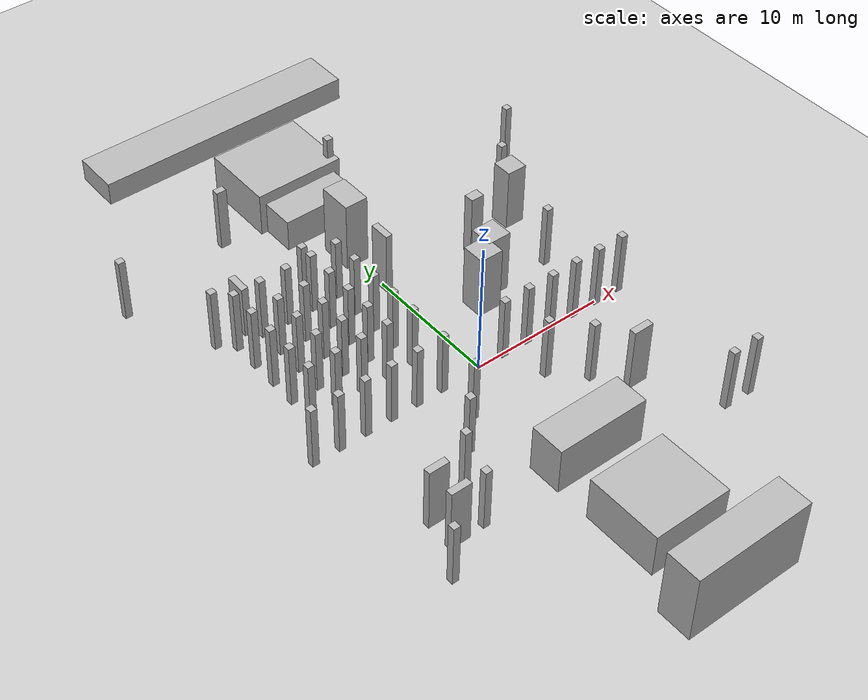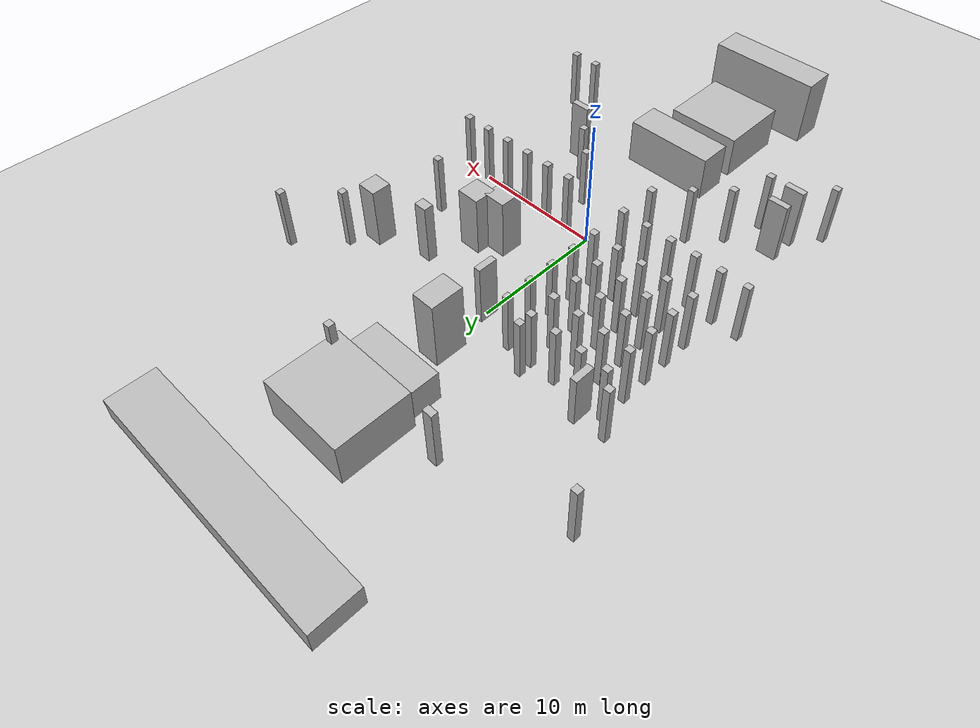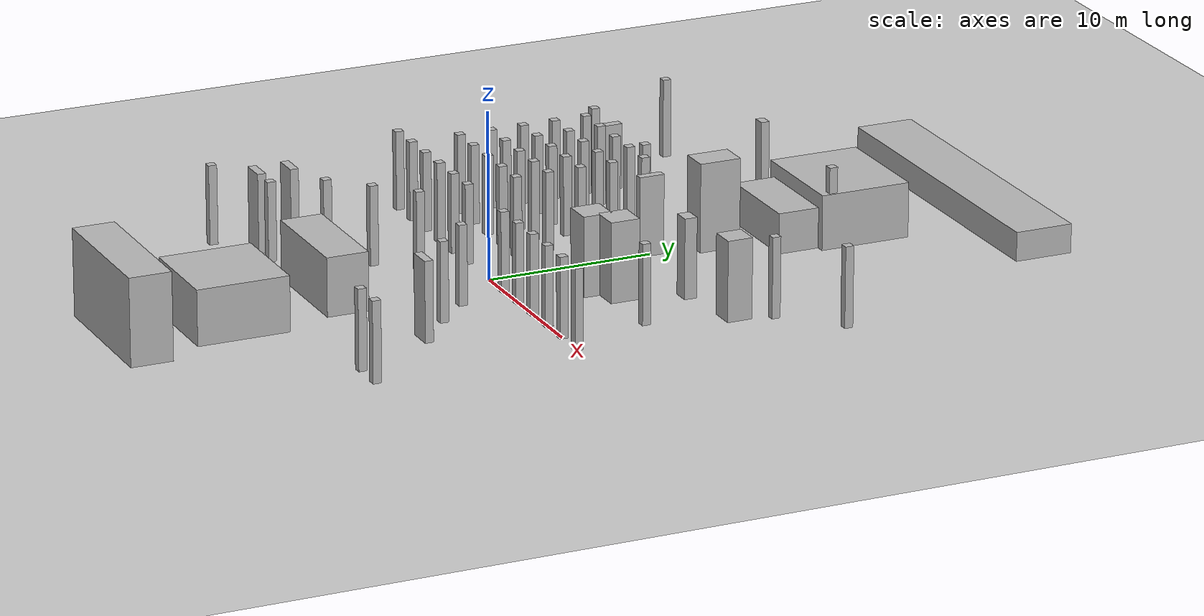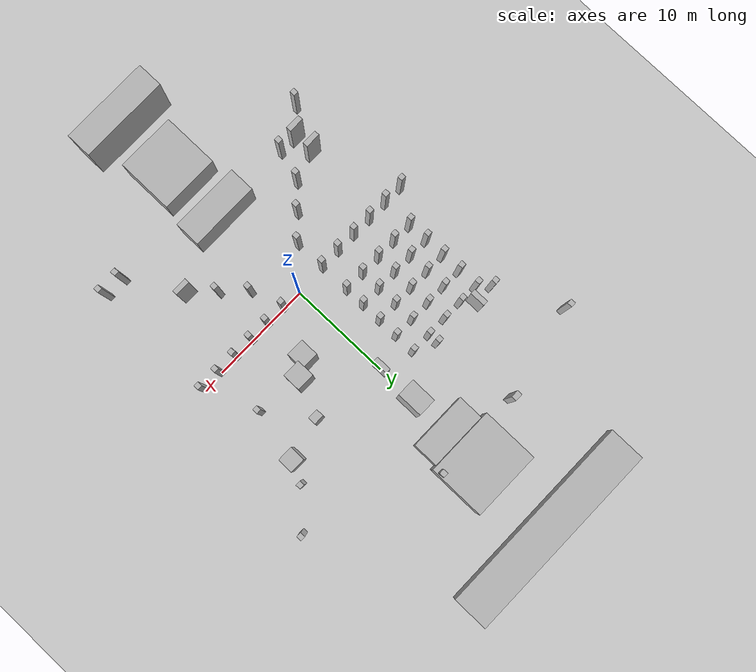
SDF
<?xml version="1.0" ?>
<sdf version="1.5">
  <world name="default">
    <!-- A global light source -->
    <include>
      <uri>model://sun</uri>
    </include>
    <!-- A ground plane -->
    <include>
      <uri>model://ground_plane</uri>
    </include>
    <physics name='default_physics' default='0' type='ode'>
      <gravity>0 0 -9.8066</gravity>
      <ode>
        <solver>
          <type>quick</type>
          <iters>10</iters>
          <sor>1.3</sor>
          <use_dynamic_moi_rescaling>0</use_dynamic_moi_rescaling>
        </solver>
        <constraints>
          <cfm>0</cfm>
          <erp>0.2</erp>
          <contact_max_correcting_vel>100</contact_max_correcting_vel>
          <contact_surface_layer>0.001</contact_surface_layer>
        </constraints>
      </ode>
      <max_step_size>0.004</max_step_size>
      <real_time_factor>1</real_time_factor>
      <real_time_update_rate>250</real_time_update_rate>
      <magnetic_field>6.0e-6 2.3e-5 -4.2e-5</magnetic_field>
    </physics>
	<model name ='box0'>
		<pose>4.0 4.5 2.4 0 0 0</pose>
		<link name ='link'>
		  <pose>0 0 0 0 0 0</pose>
		  <collision name ='collision'>
		    <geometry>
		      <box><size>1.75 1.75 4.8</size></box>
		    </geometry>
		  </collision>
		  <visual name ='visual'>
		    <geometry>
		      <box><size>1.75 1.75 4.8</size></box>
		    </geometry>
		  </visual>
		</link>
	  </model>
	<model name ='box1'>
		<pose>5.5 5.5 2.4 0 0 0</pose>
		<link name ='link'>
		  <pose>0 0 0 0 0 0</pose>
		  <collision name ='collision'>
		    <geometry>
		      <box><size>1.75 1.75 4.8</size></box>
		    </geometry>
		  </collision>
		  <visual name ='visual'>
		    <geometry>
		      <box><size>1.75 1.75 4.8</size></box>
		    </geometry>
		  </visual>
		</link>
	  </model>
	<model name ='box2'>
		<pose>7.0 9.0 2.4 0 0 0</pose>
		<link name ='link'>
		  <pose>0 0 0 0 0 0</pose>
		  <collision name ='collision'>
		    <geometry>
		      <box><size>1.0 0.75 4.8</size></box>
		    </geometry>
		  </collision>
		  <visual name ='visual'>
		    <geometry>
		      <box><size>1.0 0.75 4.8</size></box>
		    </geometry>
		  </visual>
		</link>
	  </model>
	<model name ='box3'>
		<pose>11.00 10.00 2.4 0 0 0</pose>
		<link name ='link'>
		  <pose>0 0 0 0 0 0</pose>
		  <collision name ='collision'>
		    <geometry>
		      <box><size>1.5 1.5 4.8</size></box>
		    </geometry>
		  </collision>
		  <visual name ='visual'>
		    <geometry>
		      <box><size>1.5 1.5 4.8</size></box>
		    </geometry>
		  </visual>
		</link>
	  </model>
	  <model name ='box4'>
		<pose>12.00 12.00 2.4 0 0 0</pose>
		<link name ='link'>
		  <pose>0 0 0 0 0 0</pose>
		  <collision name ='collision'>
		    <geometry>
		      <box><size>0.5 0.5 4.8</size></box>
		    </geometry>
		  </collision>
		  <visual name ='visual'>
		    <geometry>
		      <box><size>0.5 0.5 4.8</size></box>
		    </geometry>
		  </visual>
		</link>
	  </model>
	<model name ='box5'>
		<pose>-12.00 -12.00 2.4 0 0 0</pose>
		<link name ='link'>
		  <pose>0 0 0 0 0 0</pose>
		  <collision name ='collision'>
		    <geometry>
		      <box><size>0.5 0.5 4.8</size></box>
		    </geometry>
		  </collision>
		  <visual name ='visual'>
		    <geometry>
		      <box><size>0.5 0.5 4.8</size></box>
		    </geometry>
		  </visual>
		</link>
	  </model>
        <model name ='box6'>
		<pose>-12.00 12.00 2.4 0 0 0</pose>
		<link name ='link'>
		  <pose>0 0 0 0 0 0</pose>
		  <collision name ='collision'>
		    <geometry>
		      <box><size>0.5 0.5 4.8</size></box>
		    </geometry>
		  </collision>
		  <visual name ='visual'>
		    <geometry>
		      <box><size>0.5 0.5 4.8</size></box>
		    </geometry>
		  </visual>
		</link>
	  </model>
	<model name ='box7'>
		<pose>12.00 -12.00 2.4 0 0 0</pose>
		<link name ='link'>
		  <pose>0 0 0 0 0 0</pose>
		  <collision name ='collision'>
		    <geometry>
		      <box><size>0.5 0.5 4.8</size></box>
		    </geometry>
		  </collision>
		  <visual name ='visual'>
		    <geometry>
		      <box><size>0.5 0.5 4.8</size></box>
		    </geometry>
		  </visual>
		</link>
	  </model>
	<model name ='box8'>
		<pose>-5.00 12.00 2.4 0 0 0</pose>
		<link name ='link'>
		  <pose>0 0 0 0 0 0</pose>
		  <collision name ='collision'>
		    <geometry>
		      <box><size>0.5 0.5 4.8</size></box>
		    </geometry>
		  </collision>
		  <visual name ='visual'>
		    <geometry>
		      <box><size>0.5 0.5 4.8</size></box>
		    </geometry>
		  </visual>
		</link>
	  </model>
	<model name ='box9'>
		<pose>15.00 15.00 2.4 0 0 0</pose>
		<link name ='link'>
		  <pose>0 0 0 0 0 0</pose>
		  <collision name ='collision'>
		    <geometry>
		      <box><size>0.5 0.5 4.8</size></box>
		    </geometry>
		  </collision>
		  <visual name ='visual'>
		    <geometry>
		      <box><size>0.5 0.5 4.8</size></box>
		    </geometry>
		  </visual>
		</link>
	  </model>
	<model name ='box10'>
		<pose>10.00 -12.00 2.4 0 0 0</pose>
		<link name ='link'>
		  <pose>0 0 0 0 0 0</pose>
		  <collision name ='collision'>
		    <geometry>
		      <box><size>0.5 0.5 4.8</size></box>
		    </geometry>
		  </collision>
		  <visual name ='visual'>
		    <geometry>
		      <box><size>0.5 0.5 4.8</size></box>
		    </geometry>
		  </visual>
		</link>
	  </model>
	<model name ='box11'>
		<pose>7.00 -7.00 2.4 0 0 0</pose>
		<link name ='link'>
		  <pose>0 0 0 0 0 0</pose>
		  <collision name ='collision'>
		    <geometry>
		      <box><size>1.5 0.5 4.8</size></box>
		    </geometry>
		  </collision>
		  <visual name ='visual'>
		    <geometry>
		      <box><size>1.5 0.5 4.8</size></box>
		    </geometry>
		  </visual>
		</link>
	  </model>
	<model name ='box12'>
		<pose>-10.00 12.00 2.4 0 0 0</pose>
		<link name ='link'>
		  <pose>0 0 0 0 0 0</pose>
		  <collision name ='collision'>
		    <geometry>
		      <box><size>0.5 1.5 4.0</size></box>
		    </geometry>
		  </collision>
		  <visual name ='visual'>
		    <geometry>
		      <box><size>0.5 1.5 4.0</size></box>
		    </geometry>
		  </visual>
		</link>
	  </model>
	<model name ='box13'>
		<pose>10.00 5.00 2.4 0 0 0</pose>
		<link name ='link'>
		  <pose>0 0 0 0 0 0</pose>
		  <collision name ='collision'>
		    <geometry>
		      <box><size>0.5 0.5 4.8</size></box>
		    </geometry>
		  </collision>
		  <visual name ='visual'>
		    <geometry>
		      <box><size>0.5 0.5 4.8</size></box>
		    </geometry>
		  </visual>
		</link>
	  </model>
	<model name ='box14'>
		<pose>3.00 20.00 2.4 0 0 0</pose>
		<link name ='link'>
		  <pose>0 0 0 0 0 0</pose>
		  <collision name ='collision'>
		    <geometry>
		      <box><size>0.5 0.5 4.8</size></box>
		    </geometry>
		  </collision>
		  <visual name ='visual'>
		    <geometry>
		      <box><size>0.5 0.5 4.8</size></box>
		    </geometry>
		  </visual>
		</link>
	  </model>
	<model name ='box15'>
		<pose>-15.00 18.00 2.4 0 0 0</pose>
		<link name ='link'>
		  <pose>0 0 0 0 0 0</pose>
		  <collision name ='collision'>
		    <geometry>
		      <box><size>0.5 0.5 4.8</size></box>
		    </geometry>
		  </collision>
		  <visual name ='visual'>
		    <geometry>
		      <box><size>0.5 0.5 4.8</size></box>
		    </geometry>
		  </visual>
		</link>
	  </model>
	<model name ='box16'>
		<pose>2.00 0.00 2.4 0 0 0</pose>
		<link name ='link'>
		  <pose>0 0 0 0 0 0</pose>
		  <collision name ='collision'>
		    <geometry>
		      <box><size>0.5 0.5 4.8</size></box>
		    </geometry>
		  </collision>
		  <visual name ='visual'>
		    <geometry>
		      <box><size>0.5 0.5 4.8</size></box>
		    </geometry>
		  </visual>
		</link>
	  </model>
	<model name ='box17'>
		<pose>4.00 0.00 2.4 0 0 0</pose>
		<link name ='link'>
		  <pose>0 0 0 0 0 0</pose>
		  <collision name ='collision'>
		    <geometry>
		      <box><size>0.5 0.5 4.8</size></box>
		    </geometry>
		  </collision>
		  <visual name ='visual'>
		    <geometry>
		      <box><size>0.5 0.5 4.8</size></box>
		    </geometry>
		  </visual>
		</link>
	  </model>
	<model name ='box18'>
		<pose>6.00 0.00 2.4 0 0 0</pose>
		<link name ='link'>
		  <pose>0 0 0 0 0 0</pose>
		  <collision name ='collision'>
		    <geometry>
		      <box><size>0.5 0.5 4.8</size></box>
		    </geometry>
		  </collision>
		  <visual name ='visual'>
		    <geometry>
		      <box><size>0.5 0.5 4.8</size></box>
		    </geometry>
		  </visual>
		</link>
	  </model>
	<model name ='box19'>
		<pose>8.00 0.00 2.4 0 0 0</pose>
		<link name ='link'>
		  <pose>0 0 0 0 0 0</pose>
		  <collision name ='collision'>
		    <geometry>
		      <box><size>0.5 0.5 4.8</size></box>
		    </geometry>
		  </collision>
		  <visual name ='visual'>
		    <geometry>
		      <box><size>0.5 0.5 4.8</size></box>
		    </geometry>
		  </visual>
		</link>
	  </model>
	<model name ='box20'>
		<pose>10.00 0.00 2.4 0 0 0</pose>
		<link name ='link'>
		  <pose>0 0 0 0 0 0</pose>
		  <collision name ='collision'>
		    <geometry>
		      <box><size>0.5 0.5 4.8</size></box>
		    </geometry>
		  </collision>
		  <visual name ='visual'>
		    <geometry>
		      <box><size>0.5 0.5 4.8</size></box>
		    </geometry>
		  </visual>
		</link>
	  </model>
	<model name ='box21'>
		<pose>12.00 0.00 2.4 0 0 0</pose>
		<link name ='link'>
		  <pose>0 0 0 0 0 0</pose>
		  <collision name ='collision'>
		    <geometry>
		      <box><size>0.5 0.5 4.8</size></box>
		    </geometry>
		  </collision>
		  <visual name ='visual'>
		    <geometry>
		      <box><size>0.5 0.5 4.8</size></box>
		    </geometry>
		  </visual>
		</link>
	  </model>
	<model name ='box22'>
		<pose>-10.00 -10.00 2.4 0 0 0</pose>
		<link name ='link'>
		  <pose>0 0 0 0 0 0</pose>
		  <collision name ='collision'>
		    <geometry>
		      <box><size>1.5 0.5 4.8</size></box>
		    </geometry>
		  </collision>
		  <visual name ='visual'>
		    <geometry>
		      <box><size>1.5 0.5 4.8</size></box>
		    </geometry>
		  </visual>
		</link>
	  </model>
	<model name ='box23'>
		<pose>-8.00 -10.00 2.4 0 0 0</pose>
		<link name ='link'>
		  <pose>0 0 0 0 0 0</pose>
		  <collision name ='collision'>
		    <geometry>
		      <box><size>0.5 0.5 4.8</size></box>
		    </geometry>
		  </collision>
		  <visual name ='visual'>
		    <geometry>
		      <box><size>0.5 0.5 4.8</size></box>
		    </geometry>
		  </visual>
		</link>
	  </model>
	<model name ='box24'>
		<pose>-10.00 -8.00 2.4 0 0 0</pose>
		<link name ='link'>
		  <pose>0 0 0 0 0 0</pose>
		  <collision name ='collision'>
		    <geometry>
		      <box><size>1.5 0.5 4.8</size></box>
		    </geometry>
		  </collision>
		  <visual name ='visual'>
		    <geometry>
		      <box><size>1.5 0.5 4.8</size></box>
		    </geometry>
		  </visual>
		</link>
	  </model>
	<model name ='box25'>
		<pose>-7.00 -7.00 2.4 0 0 0</pose>
		<link name ='link'>
		  <pose>0 0 0 0 0 0</pose>
		  <collision name ='collision'>
		    <geometry>
		      <box><size>0.5 0.5 4.8</size></box>
		    </geometry>
		  </collision>
		  <visual name ='visual'>
		    <geometry>
		      <box><size>0.5 0.5 4.8</size></box>
		    </geometry>
		  </visual>
		</link>
	  </model>
	<model name ='box26'>
		<pose>-5.00 -5.00 2.4 0 0 0</pose>
		<link name ='link'>
		  <pose>0 0 0 0 0 0</pose>
		  <collision name ='collision'>
		    <geometry>
		      <box><size>0.5 0.5 4.8</size></box>
		    </geometry>
		  </collision>
		  <visual name ='visual'>
		    <geometry>
		      <box><size>0.5 0.5 4.8</size></box>
		    </geometry>
		  </visual>
		</link>
	  </model>
	<model name ='box27'>
		<pose>-3.00 -3.00 2.4 0 0 0</pose>
		<link name ='link'>
		  <pose>0 0 0 0 0 0</pose>
		  <collision name ='collision'>
		    <geometry>
		      <box><size>0.5 0.5 4.8</size></box>
		    </geometry>
		  </collision>
		  <visual name ='visual'>
		    <geometry>
		      <box><size>0.5 0.5 4.8</size></box>
		    </geometry>
		  </visual>
		</link>
	  </model>
	<model name ='box28'>
		<pose>5.00 -5.00 2.4 0 0 0</pose>
		<link name ='link'>
		  <pose>0 0 0 0 0 0</pose>
		  <collision name ='collision'>
		    <geometry>
		      <box><size>0.5 0.5 4.8</size></box>
		    </geometry>
		  </collision>
		  <visual name ='visual'>
		    <geometry>
		      <box><size>0.5 0.5 4.8</size></box>
		    </geometry>
		  </visual>
		</link>
	  </model>
	<model name ='box29'>
		<pose>3.00 -3.00 2.4 0 0 0</pose>
		<link name ='link'>
		  <pose>0 0 0 0 0 0</pose>
		  <collision name ='collision'>
		    <geometry>
		      <box><size>0.5 0.5 4.8</size></box>
		    </geometry>
		  </collision>
		  <visual name ='visual'>
		    <geometry>
		      <box><size>0.5 0.5 4.8</size></box>
		    </geometry>
		  </visual>
		</link>
	  </model>
	<model name ='box30'>
		<pose>-3.00 0.00 2.4 0 0 0</pose>
		<link name ='link'>
		  <pose>0 0 0 0 0 0</pose>
		  <collision name ='collision'>
		    <geometry>
		      <box><size>0.5 0.5 4.8</size></box>
		    </geometry>
		  </collision>
		  <visual name ='visual'>
		    <geometry>
		      <box><size>0.5 0.5 4.8</size></box>
		    </geometry>
		  </visual>
		</link>
	  </model>
	<model name ='box31'>
		<pose>-5.00 0.00 2.4 0 0 0</pose>
		<link name ='link'>
		  <pose>0 0 0 0 0 0</pose>
		  <collision name ='collision'>
		    <geometry>
		      <box><size>0.5 0.5 4.8</size></box>
		    </geometry>
		  </collision>
		  <visual name ='visual'>
		    <geometry>
		      <box><size>0.5 0.5 4.8</size></box>
		    </geometry>
		  </visual>
		</link>
	  </model>
	<model name ='box32'>
		<pose>-7.00 0.00 2.4 0 0 0</pose>
		<link name ='link'>
		  <pose>0 0 0 0 0 0</pose>
		  <collision name ='collision'>
		    <geometry>
		      <box><size>0.5 0.5 4.8</size></box>
		    </geometry>
		  </collision>
		  <visual name ='visual'>
		    <geometry>
		      <box><size>0.5 0.5 4.8</size></box>
		    </geometry>
		  </visual>
		</link>
	  </model>
	<model name ='box33'>
		<pose>-9.00 0.00 2.4 0 0 0</pose>
		<link name ='link'>
		  <pose>0 0 0 0 0 0</pose>
		  <collision name ='collision'>
		    <geometry>
		      <box><size>0.5 0.5 4.8</size></box>
		    </geometry>
		  </collision>
		  <visual name ='visual'>
		    <geometry>
		      <box><size>0.5 0.5 4.8</size></box>
		    </geometry>
		  </visual>
		</link>
	  </model>
	<model name ='box34'>
		<pose>-11.00 0.00 2.4 0 0 0</pose>
		<link name ='link'>
		  <pose>0 0 0 0 0 0</pose>
		  <collision name ='collision'>
		    <geometry>
		      <box><size>0.5 0.5 4.8</size></box>
		    </geometry>
		  </collision>
		  <visual name ='visual'>
		    <geometry>
		      <box><size>0.5 0.5 4.8</size></box>
		    </geometry>
		  </visual>
		</link>
	  </model>
	<model name ='box35'>
		<pose>-13.00 0.00 2.4 0 0 0</pose>
		<link name ='link'>
		  <pose>0 0 0 0 0 0</pose>
		  <collision name ='collision'>
		    <geometry>
		      <box><size>0.5 0.5 4.8</size></box>
		    </geometry>
		  </collision>
		  <visual name ='visual'>
		    <geometry>
		      <box><size>0.5 0.5 4.8</size></box>
		    </geometry>
		  </visual>
		</link>
	  </model>
	<model name ='box36'>
		<pose>-3.00 3.00 2.4 0 0 0</pose>
		<link name ='link'>
		  <pose>0 0 0 0 0 0</pose>
		  <collision name ='collision'>
		    <geometry>
		      <box><size>0.5 0.5 4.8</size></box>
		    </geometry>
		  </collision>
		  <visual name ='visual'>
		    <geometry>
		      <box><size>0.5 0.5 4.8</size></box>
		    </geometry>
		  </visual>
		</link>
	  </model>
	<model name ='box37'>
		<pose>-3.00 5.00 2.4 0 0 0</pose>
		<link name ='link'>
		  <pose>0 0 0 0 0 0</pose>
		  <collision name ='collision'>
		    <geometry>
		      <box><size>0.5 0.5 4.8</size></box>
		    </geometry>
		  </collision>
		  <visual name ='visual'>
		    <geometry>
		      <box><size>0.5 0.5 4.8</size></box>
		    </geometry>
		  </visual>
		</link>
	  </model>
	<model name ='box38'>
		<pose>-3.00 7.00 2.4 0 0 0</pose>
		<link name ='link'>
		  <pose>0 0 0 0 0 0</pose>
		  <collision name ='collision'>
		    <geometry>
		      <box><size>0.5 0.5 4.8</size></box>
		    </geometry>
		  </collision>
		  <visual name ='visual'>
		    <geometry>
		      <box><size>0.5 0.5 4.8</size></box>
		    </geometry>
		  </visual>
		</link>
	  </model>
	<model name ='box39'>
		<pose>-3.00 9.00 2.4 0 0 0</pose>
		<link name ='link'>
		  <pose>0 0 0 0 0 0</pose>
		  <collision name ='collision'>
		    <geometry>
		      <box><size>0.5 0.5 4.8</size></box>
		    </geometry>
		  </collision>
		  <visual name ='visual'>
		    <geometry>
		      <box><size>0.5 0.5 4.8</size></box>
		    </geometry>
		  </visual>
		</link>
	  </model>
	<model name ='box40'>
		<pose>-3.00 11.00 2.4 0 0 0</pose>
		<link name ='link'>
		  <pose>0 0 0 0 0 0</pose>
		  <collision name ='collision'>
		    <geometry>
		      <box><size>0.5 0.5 4.8</size></box>
		    </geometry>
		  </collision>
		  <visual name ='visual'>
		    <geometry>
		      <box><size>0.5 0.5 4.8</size></box>
		    </geometry>
		  </visual>
		</link>
	  </model>
	<model name ='box41'>
		<pose>-5.00 3.00 2.4 0 0 0</pose>
		<link name ='link'>
		  <pose>0 0 0 0 0 0</pose>
		  <collision name ='collision'>
		    <geometry>
		      <box><size>0.5 0.5 4.8</size></box>
		    </geometry>
		  </collision>
		  <visual name ='visual'>
		    <geometry>
		      <box><size>0.5 0.5 4.8</size></box>
		    </geometry>
		  </visual>
		</link>
	  </model>
	<model name ='box42'>
		<pose>-5.00 5.00 2.4 0 0 0</pose>
		<link name ='link'>
		  <pose>0 0 0 0 0 0</pose>
		  <collision name ='collision'>
		    <geometry>
		      <box><size>0.5 0.5 4.8</size></box>
		    </geometry>
		  </collision>
		  <visual name ='visual'>
		    <geometry>
		      <box><size>0.5 0.5 4.8</size></box>
		    </geometry>
		  </visual>
		</link>
	  </model>
	<model name ='box43'>
		<pose>-5.00 7.00 2.4 0 0 0</pose>
		<link name ='link'>
		  <pose>0 0 0 0 0 0</pose>
		  <collision name ='collision'>
		    <geometry>
		      <box><size>0.5 0.5 4.8</size></box>
		    </geometry>
		  </collision>
		  <visual name ='visual'>
		    <geometry>
		      <box><size>0.5 0.5 4.8</size></box>
		    </geometry>
		  </visual>
		</link>
	  </model>
	<model name ='box44'>
		<pose>-5.00 9.00 2.4 0 0 0</pose>
		<link name ='link'>
		  <pose>0 0 0 0 0 0</pose>
		  <collision name ='collision'>
		    <geometry>
		      <box><size>0.5 0.5 4.8</size></box>
		    </geometry>
		  </collision>
		  <visual name ='visual'>
		    <geometry>
		      <box><size>0.5 0.5 4.8</size></box>
		    </geometry>
		  </visual>
		</link>
	  </model>
	<model name ='box45'>
		<pose>-5.00 11.00 2.4 0 0 0</pose>
		<link name ='link'>
		  <pose>0 0 0 0 0 0</pose>
		  <collision name ='collision'>
		    <geometry>
		      <box><size>0.5 0.5 4.8</size></box>
		    </geometry>
		  </collision>
		  <visual name ='visual'>
		    <geometry>
		      <box><size>0.5 0.5 4.8</size></box>
		    </geometry>
		  </visual>
		</link>
	  </model>
	<model name ='box46'>
		<pose>-7.00 3.00 2.4 0 0 0</pose>
		<link name ='link'>
		  <pose>0 0 0 0 0 0</pose>
		  <collision name ='collision'>
		    <geometry>
		      <box><size>0.5 0.5 4.8</size></box>
		    </geometry>
		  </collision>
		  <visual name ='visual'>
		    <geometry>
		      <box><size>0.5 0.5 4.8</size></box>
		    </geometry>
		  </visual>
		</link>
	  </model>
	<model name ='box47'>
		<pose>-7.00 5.00 2.4 0 0 0</pose>
		<link name ='link'>
		  <pose>0 0 0 0 0 0</pose>
		  <collision name ='collision'>
		    <geometry>
		      <box><size>0.5 0.5 4.8</size></box>
		    </geometry>
		  </collision>
		  <visual name ='visual'>
		    <geometry>
		      <box><size>0.5 0.5 4.8</size></box>
		    </geometry>
		  </visual>
		</link>
	  </model>
	<model name ='box48'>
		<pose>-7.00 7.00 2.4 0 0 0</pose>
		<link name ='link'>
		  <pose>0 0 0 0 0 0</pose>
		  <collision name ='collision'>
		    <geometry>
		      <box><size>0.5 0.5 4.8</size></box>
		    </geometry>
		  </collision>
		  <visual name ='visual'>
		    <geometry>
		      <box><size>0.5 0.5 4.8</size></box>
		    </geometry>
		  </visual>
		</link>
	  </model>
	<model name ='box49'>
		<pose>-7.00 9.00 2.4 0 0 0</pose>
		<link name ='link'>
		  <pose>0 0 0 0 0 0</pose>
		  <collision name ='collision'>
		    <geometry>
		      <box><size>0.5 0.5 4.8</size></box>
		    </geometry>
		  </collision>
		  <visual name ='visual'>
		    <geometry>
		      <box><size>0.5 0.5 4.8</size></box>
		    </geometry>
		  </visual>
		</link>
	  </model>
	<model name ='box50'>
		<pose>-7.00 11.00 2.4 0 0 0</pose>
		<link name ='link'>
		  <pose>0 0 0 0 0 0</pose>
		  <collision name ='collision'>
		    <geometry>
		      <box><size>0.5 0.5 4.8</size></box>
		    </geometry>
		  </collision>
		  <visual name ='visual'>
		    <geometry>
		      <box><size>0.5 0.5 4.8</size></box>
		    </geometry>
		  </visual>
		</link>
	  </model>
	<model name ='box51'>
		<pose>-9.00 3.00 2.4 0 0 0</pose>
		<link name ='link'>
		  <pose>0 0 0 0 0 0</pose>
		  <collision name ='collision'>
		    <geometry>
		      <box><size>0.5 0.5 4.8</size></box>
		    </geometry>
		  </collision>
		  <visual name ='visual'>
		    <geometry>
		      <box><size>0.5 0.5 4.8</size></box>
		    </geometry>
		  </visual>
		</link>
	  </model>
	<model name ='box52'>
		<pose>-9.00 5.00 2.4 0 0 0</pose>
		<link name ='link'>
		  <pose>0 0 0 0 0 0</pose>
		  <collision name ='collision'>
		    <geometry>
		      <box><size>0.5 0.5 4.8</size></box>
		    </geometry>
		  </collision>
		  <visual name ='visual'>
		    <geometry>
		      <box><size>0.5 0.5 4.8</size></box>
		    </geometry>
		  </visual>
		</link>
	  </model>
	<model name ='box53'>
		<pose>-9.00 7.00 2.4 0 0 0</pose>
		<link name ='link'>
		  <pose>0 0 0 0 0 0</pose>
		  <collision name ='collision'>
		    <geometry>
		      <box><size>0.5 0.5 4.8</size></box>
		    </geometry>
		  </collision>
		  <visual name ='visual'>
		    <geometry>
		      <box><size>0.5 0.5 4.8</size></box>
		    </geometry>
		  </visual>
		</link>
	  </model>
	<model name ='box54'>
		<pose>-9.00 9.00 2.4 0 0 0</pose>
		<link name ='link'>
		  <pose>0 0 0 0 0 0</pose>
		  <collision name ='collision'>
		    <geometry>
		      <box><size>0.5 0.5 4.8</size></box>
		    </geometry>
		  </collision>
		  <visual name ='visual'>
		    <geometry>
		      <box><size>0.5 0.5 4.8</size></box>
		    </geometry>
		  </visual>
		</link>
	  </model>
	<model name ='box55'>
		<pose>-9.00 11.00 2.4 0 0 0</pose>
		<link name ='link'>
		  <pose>0 0 0 0 0 0</pose>
		  <collision name ='collision'>
		    <geometry>
		      <box><size>0.5 0.5 4.8</size></box>
		    </geometry>
		  </collision>
		  <visual name ='visual'>
		    <geometry>
		      <box><size>0.5 0.5 4.8</size></box>
		    </geometry>
		  </visual>
		</link>
	  </model>
	<model name ='box56'>
		<pose>-11.00 3.00 2.4 0 0 0</pose>
		<link name ='link'>
		  <pose>0 0 0 0 0 0</pose>
		  <collision name ='collision'>
		    <geometry>
		      <box><size>0.5 0.5 4.8</size></box>
		    </geometry>
		  </collision>
		  <visual name ='visual'>
		    <geometry>
		      <box><size>0.5 0.5 4.8</size></box>
		    </geometry>
		  </visual>
		</link>
	  </model>
	<model name ='box57'>
		<pose>-11.00 5.00 2.4 0 0 0</pose>
		<link name ='link'>
		  <pose>0 0 0 0 0 0</pose>
		  <collision name ='collision'>
		    <geometry>
		      <box><size>0.5 0.5 4.8</size></box>
		    </geometry>
		  </collision>
		  <visual name ='visual'>
		    <geometry>
		      <box><size>0.5 0.5 4.8</size></box>
		    </geometry>
		  </visual>
		</link>
	  </model>
	<model name ='box58'>
		<pose>-11.00 7.00 2.4 0 0 0</pose>
		<link name ='link'>
		  <pose>0 0 0 0 0 0</pose>
		  <collision name ='collision'>
		    <geometry>
		      <box><size>0.5 0.5 4.8</size></box>
		    </geometry>
		  </collision>
		  <visual name ='visual'>
		    <geometry>
		      <box><size>0.5 0.5 4.8</size></box>
		    </geometry>
		  </visual>
		</link>
	  </model>
	<model name ='box59'>
		<pose>-11.00 9.00 2.4 0 0 0</pose>
		<link name ='link'>
		  <pose>0 0 0 0 0 0</pose>
		  <collision name ='collision'>
		    <geometry>
		      <box><size>0.5 0.5 4.8</size></box>
		    </geometry>
		  </collision>
		  <visual name ='visual'>
		    <geometry>
		      <box><size>0.5 0.5 4.8</size></box>
		    </geometry>
		  </visual>
		</link>
	  </model>
	<model name ='box60'>
		<pose>-11.00 11.00 2.4 0 0 0</pose>
		<link name ='link'>
		  <pose>0 0 0 0 0 0</pose>
		  <collision name ='collision'>
		    <geometry>
		      <box><size>0.5 0.5 4.8</size></box>
		    </geometry>
		  </collision>
		  <visual name ='visual'>
		    <geometry>
		      <box><size>0.5 0.5 4.8</size></box>
		    </geometry>
		  </visual>
		</link>
	  </model>
	<model name ='box61'>
		<pose>0.00 10.00 2.4 0 0 0</pose>
		<link name ='link'>
		  <pose>0 0 0 0 0 0</pose>
		  <collision name ='collision'>
		    <geometry>
		      <box><size>0.5 1.5 4.8</size></box>
		    </geometry>
		  </collision>
		  <visual name ='visual'>
		    <geometry>
		      <box><size>0.5 1.5 4.8</size></box>
		    </geometry>
		  </visual>
		</link>
	  </model>
	<model name ='box62'>
		<pose>0.00 14.00 2.4 0 0 0</pose>
		<link name ='link'>
		  <pose>0 0 0 0 0 0</pose>
		  <collision name ='collision'>
		    <geometry>
		      <box><size>1.75 2.5 5.8</size></box>
		    </geometry>
		  </collision>
		  <visual name ='visual'>
		    <geometry>
		      <box><size>1.75 2.5 5.8</size></box>
		    </geometry>
		  </visual>
		</link>
	  </model>
	<model name ='box63'>
		<pose>0.00 -10.00 2.4 0 0 0</pose>
		<link name ='link'>
		  <pose>0 0 0 0 0 0</pose>
		  <collision name ='collision'>
		    <geometry>
		      <box><size>6.75 2.5 3.5</size></box>
		    </geometry>
		  </collision>
		  <visual name ='visual'>
		    <geometry>
		      <box><size>6.75 2.5 3.5</size></box>
		    </geometry>
		  </visual>
		</link>
	  </model>
	<model name ='box64'>
		<pose>0.00 -22.00 2.4 0 0 0</pose>
		<link name ='link'>
		  <pose>0 0 0 0 0 0</pose>
		  <collision name ='collision'>
		    <geometry>
		      <box><size>8.75 2.5 5.5</size></box>
		    </geometry>
		  </collision>
		  <visual name ='visual'>
		    <geometry>
		      <box><size>8.75 2.5 5.5</size></box>
		    </geometry>
		  </visual>
		</link>
	  </model>
	<model name ='box65'>
		<pose>0.00 -16.00 1.00 0 0 0</pose>
		<link name ='link'>
		  <pose>0 0 0 0 0 0</pose>
		  <collision name ='collision'>
		    <geometry>
		      <box><size>5.75 5.5 4.5</size></box>
		    </geometry>
		  </collision>
		  <visual name ='visual'>
		    <geometry>
		      <box><size>5.75 5.5 4.5</size></box>
		    </geometry>
		  </visual>
		</link>
	  </model>

	<model name ='box66'>
		<pose>0.00 18.00 1.00 0 0 0</pose>
		<link name ='link'>
		  <pose>0 0 0 0 0 0</pose>
		  <collision name ='collision'>
		    <geometry>
		      <box><size>5.75 2.5 2.75</size></box>
		    </geometry>
		  </collision>
		  <visual name ='visual'>
		    <geometry>
		      <box><size>5.75 2.5 2.75</size></box>
		    </geometry>
		  </visual>
		</link>
	  </model>

	<model name ='box67'>
		<pose>0.00 22.00 1.00 0 0 0</pose>
		<link name ='link'>
		  <pose>0 0 0 0 0 0</pose>
		  <collision name ='collision'>
		    <geometry>
		      <box><size>6.75 5.5 4.5</size></box>
		    </geometry>
		  </collision>
		  <visual name ='visual'>
		    <geometry>
		      <box><size>6.75 5.5 4.5</size></box>
		    </geometry>
		  </visual>
		</link>
	  </model>

	<model name ='box68'>
		<pose>-6.00 20.00 1.00 0 0 0</pose>
		<link name ='link'>
		  <pose>0 0 0 0 0 0</pose>
		  <collision name ='collision'>
		    <geometry>
		      <box><size>0.75 0.5 7.5</size></box>
		    </geometry>
		  </collision>
		  <visual name ='visual'>
		    <geometry>
		      <box><size>0.75 0.5 7.5</size></box>
		    </geometry>
		  </visual>
		</link>
	  </model>

	<model name ='box69'>
		<pose>0.00 30.00 1.00 0 0 0</pose>
		<link name ='link'>
		  <pose>0 0 0 0 0 0</pose>
		  <collision name ='collision'>
		    <geometry>
		      <box><size>20.00 3.5 1.75</size></box>
		    </geometry>
		  </collision>
		  <visual name ='visual'>
		    <geometry>
		      <box><size>20.00 3.5 1.75</size></box>
		    </geometry>
		  </visual>
		</link>
	  </model>

  </world>
</sdf>
